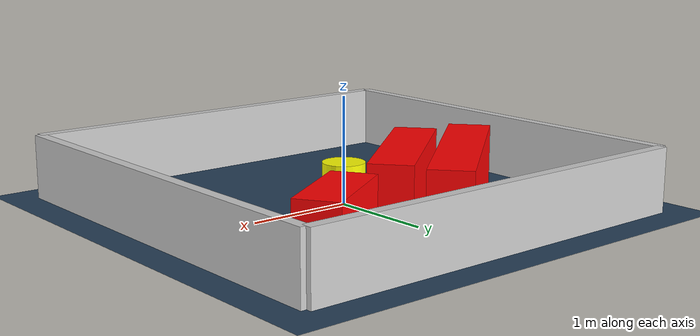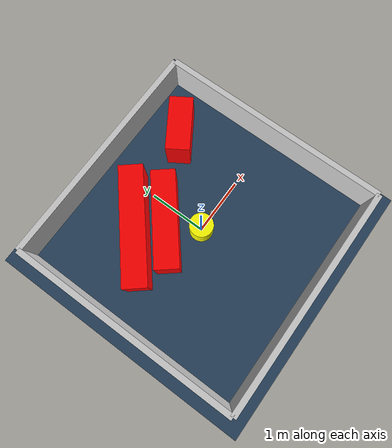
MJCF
<?xml version="1.0" ?>
<mujoco model="generated_environment">
  <option timestep="0.01" integrator="RK4" cone="elliptic"/>
  <default>
    <geom density="1"/>
  </default>
  <asset>
    <texture builtin="gradient" height="3072" rgb1="0.3 0.5 0.7" rgb2="0 0 0" type="skybox" width="512"/>
    <texture builtin="checker" height="300" mark="edge" markrgb="0.8 0.8 0.8" name="groundplane" rgb1="0.2 0.3 0.4" rgb2="0.1 0.2 0.3" type="2d" width="300"/>
    <material name="groundplane" reflectance="0.2" texrepeat="5 5" texture="groundplane" texuniform="true"/>
    <material name="robot" rgba="0.0 1.0 0.0 1"/>
  </asset>
  <worldbody>
    <light dir="0 0 -1" directional="true" pos="0 0 1.5"/>
    <geom condim="4" friction="1.0 0.005 0.001" material="groundplane" name="floor" size="0 0 0.05" type="plane"/>
    <body name="walls">
      <geom name="wall_1" condim="4" pos="-2.0 0.0 0.3" rgba="0.800000011920929 0.800000011920929 0.800000011920929 1.0" size="0.05 2.0 0.3" type="box"/>
      <geom name="wall_2" condim="4" pos="2.0 0.0 0.3" rgba="0.800000011920929 0.800000011920929 0.800000011920929 1.0" size="0.05 2.0 0.3" type="box"/>
      <geom name="wall_3" condim="4" pos="0.0 -2.0 0.3" rgba="0.800000011920929 0.800000011920929 0.800000011920929 1.0" size="2.0 0.05 0.3" type="box"/>
      <geom name="wall_4" condim="4" pos="0.0 2.0 0.3" rgba="0.800000011920929 0.800000011920929 0.800000011920929 1.0" size="2.0 0.05 0.3" type="box"/>
    </body>
    <body name="robot">
      <joint name="joint_x" type="slide" pos="0 0 0" axis="1 0 0"/>
      <joint name="joint_y" type="slide" pos="0 0 0" axis="0 1 0"/>
      <geom name="robot" type="sphere" pos="0.3 0.0 0.2" size="0.05" mass="5." friction="1.0 0.005 0.0001" condim="4" rgba="0.5 0.5 0.5 1.0"/>
      <site name="sensor_ball"/>
    </body>
    <body name="obstacle_movable_1">
      <geom name="obstacle_movable_1" condim="4" pos="0.0 0.0 0.2" euler="0 0 0.0" friction="1.0 0.005 0.001" rgba="1.0 1.0 0.0 1.0" size="0.2 0.2 0.0" type="cylinder" mass="0.1"/>
      <joint type="free"/>
    </body>
    <body name="obstacle_2_static">
      <geom name="obstacle_2_static" condim="4" pos="1.1352472839888665 1.2698992490582552 0.3" euler="0 0 32.45216877621889" friction="1.0 0.005 0.001" rgba="1 0 0 1" size="0.4669576081904497 0.2 0.3" type="box"/>
    </body>
    <body name="obstacle_3_static">
      <geom name="obstacle_3_static" condim="4" pos="-0.6568069269078739 0.8384625847707989 0.3" euler="0 0 40.02761698669361" friction="1.0 0.005 0.001" rgba="1 0 0 1" size="0.9808014678140233 0.2 0.3" type="box"/>
    </body>
    <body name="obstacle_4_static">
      <geom name="obstacle_4_static" condim="4" pos="-0.2830076606278249 0.49728729004519034 0.3" euler="0 0 219.38293409086214" friction="1.0 0.005 0.001" rgba="1 0 0 1" size="0.7968421274274993 0.2 0.3" type="box"/>
    </body>
  </worldbody>
  <actuator>
    <motor name="actuator_x" joint="joint_x" gear="1" ctrlrange="-1 1"/>
    <motor name="actuator_y" joint="joint_y" gear="1" ctrlrange="-1 1"/>
  </actuator>
</mujoco>
